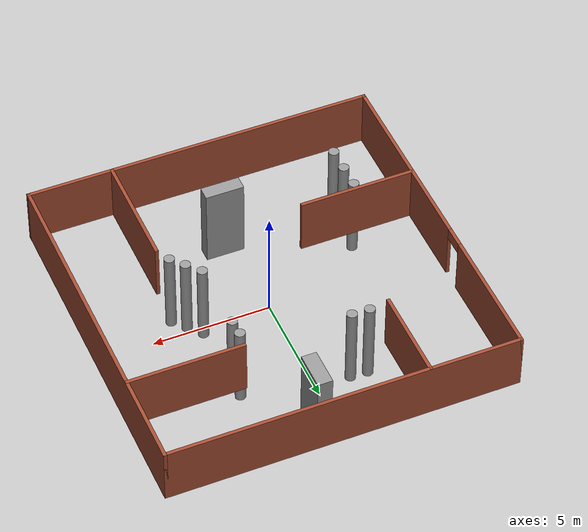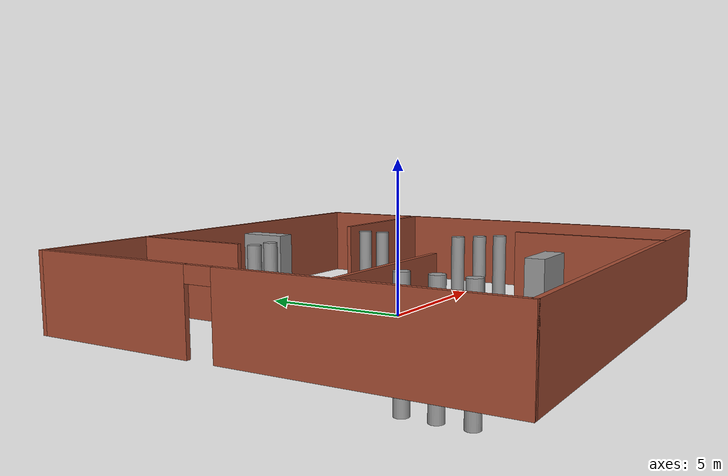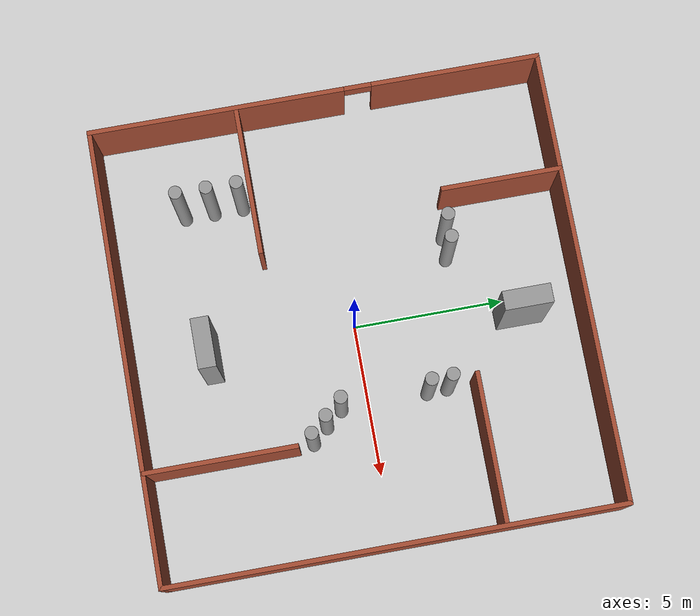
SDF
<?xml version='1.0'?>
<sdf version='1.5'>
  <model name='house_1'>
    <link name='Wall_30'>
      <pose frame=''>-7.43054 0 0 0 0 -1.5708</pose>
      <self_collide>0</self_collide>
      <kinematic>0</kinematic>
      <visual name='Wall_30_Visual_0'>
        <pose frame=''>-4.69576 0 1.25 0 -0 0</pose>
        <geometry>
          <box>
            <size>5.60848 0.15 2.5</size>
          </box>
        </geometry>
        <material>
          <script>
            <uri>file://media/materials/scripts/gazebo.material</uri>
            <name>Gazebo/Bricks</name>
          </script>
          <ambient>1 1 1 1</ambient>
          <diffuse>1 1 1 1</diffuse>
          <specular>0.2 0.2 0.2 1</specular>
          <emissive>0 0 0 1</emissive>
          <shader type='pixel'/>
        </material>
        <cast_shadows>1</cast_shadows>
        <transparency>0</transparency>
      </visual>
      <visual name='Wall_30_Visual_1'>
        <pose frame=''>3.25424 0 1.25 0 -0 0</pose>
        <geometry>
          <box>
            <size>8.49152 0.15 2.5</size>
          </box>
        </geometry>
        <material>
          <script>
            <uri>file://media/materials/scripts/gazebo.material</uri>
            <name>Gazebo/Bricks</name>
          </script>
          <ambient>1 1 1 1</ambient>
          <diffuse>1 1 1 1</diffuse>
          <specular>0.2 0.2 0.2 1</specular>
          <emissive>0 0 0 1</emissive>
          <shader type='pixel'/>
        </material>
        <cast_shadows>1</cast_shadows>
        <transparency>0</transparency>
      </visual>
      <visual name='Wall_30_Visual_2'>
        <pose frame=''>-1.44152 0 2.25 0 -0 0</pose>
        <geometry>
          <box>
            <size>0.9 0.15 0.5</size>
          </box>
        </geometry>
        <material>
          <script>
            <uri>file://media/materials/scripts/gazebo.material</uri>
            <name>Gazebo/Bricks</name>
          </script>
          <ambient>1 1 1 1</ambient>
          <diffuse>1 1 1 1</diffuse>
          <specular>0.2 0.2 0.2 1</specular>
          <emissive>0 0 0 1</emissive>
          <shader type='pixel'/>
        </material>
        <cast_shadows>1</cast_shadows>
        <transparency>0</transparency>
      </visual>
      <collision name='Wall_30_Collision_2'>
        <laser_retro>0</laser_retro>
        <max_contacts>10</max_contacts>
        <pose frame=''>-1.44152 0 2.25 0 -0 0</pose>
        <geometry>
          <box>
            <size>0.9 0.15 0.5</size>
          </box>
        </geometry>
        <surface>
          <friction>
            <ode>
              <mu>1</mu>
              <mu2>1</mu2>
              <fdir1>0 0 0</fdir1>
              <slip1>0</slip1>
              <slip2>0</slip2>
            </ode>
          </friction>
          <bounce>
            <restitution_coefficient>0</restitution_coefficient>
            <threshold>1e+06</threshold>
          </bounce>
          <contact>
            <collide_without_contact>0</collide_without_contact>
            <collide_without_contact_bitmask>1</collide_without_contact_bitmask>
            <collide_bitmask>1</collide_bitmask>
            <ode>
              <soft_cfm>0</soft_cfm>
              <soft_erp>0.2</soft_erp>
              <kp>1e+13</kp>
              <kd>1</kd>
              <max_vel>0.01</max_vel>
              <min_depth>0</min_depth>
            </ode>
            <bullet>
              <split_impulse>1</split_impulse>
              <split_impulse_penetration_threshold>-0.01</split_impulse_penetration_threshold>
              <soft_cfm>0</soft_cfm>
              <soft_erp>0.2</soft_erp>
              <kp>1e+13</kp>
              <kd>1</kd>
            </bullet>
          </contact>
        </surface>
      </collision>
      <collision name='Wall_30_Collision_0'>
        <laser_retro>0</laser_retro>
        <max_contacts>10</max_contacts>
        <pose frame=''>-4.69576 0 1.25 0 -0 0</pose>
        <geometry>
          <box>
            <size>5.60848 0.15 2.5</size>
          </box>
        </geometry>
        <surface>
          <friction>
            <ode>
              <mu>1</mu>
              <mu2>1</mu2>
              <fdir1>0 0 0</fdir1>
              <slip1>0</slip1>
              <slip2>0</slip2>
            </ode>
          </friction>
          <bounce>
            <restitution_coefficient>0</restitution_coefficient>
            <threshold>1e+06</threshold>
          </bounce>
          <contact>
            <collide_without_contact>0</collide_without_contact>
            <collide_without_contact_bitmask>1</collide_without_contact_bitmask>
            <collide_bitmask>1</collide_bitmask>
            <ode>
              <soft_cfm>0</soft_cfm>
              <soft_erp>0.2</soft_erp>
              <kp>1e+13</kp>
              <kd>1</kd>
              <max_vel>0.01</max_vel>
              <min_depth>0</min_depth>
            </ode>
            <bullet>
              <split_impulse>1</split_impulse>
              <split_impulse_penetration_threshold>-0.01</split_impulse_penetration_threshold>
              <soft_cfm>0</soft_cfm>
              <soft_erp>0.2</soft_erp>
              <kp>1e+13</kp>
              <kd>1</kd>
            </bullet>
          </contact>
        </surface>
      </collision>
      <collision name='Wall_30_Collision_1'>
        <laser_retro>0</laser_retro>
        <max_contacts>10</max_contacts>
        <pose frame=''>3.25424 0 1.25 0 -0 0</pose>
        <geometry>
          <box>
            <size>8.49152 0.15 2.5</size>
          </box>
        </geometry>
        <surface>
          <friction>
            <ode>
              <mu>1</mu>
              <mu2>1</mu2>
              <fdir1>0 0 0</fdir1>
              <slip1>0</slip1>
              <slip2>0</slip2>
            </ode>
          </friction>
          <bounce>
            <restitution_coefficient>0</restitution_coefficient>
            <threshold>1e+06</threshold>
          </bounce>
          <contact>
            <collide_without_contact>0</collide_without_contact>
            <collide_without_contact_bitmask>1</collide_without_contact_bitmask>
            <collide_bitmask>1</collide_bitmask>
            <ode>
              <soft_cfm>0</soft_cfm>
              <soft_erp>0.2</soft_erp>
              <kp>1e+13</kp>
              <kd>1</kd>
              <max_vel>0.01</max_vel>
              <min_depth>0</min_depth>
            </ode>
            <bullet>
              <split_impulse>1</split_impulse>
              <split_impulse_penetration_threshold>-0.01</split_impulse_penetration_threshold>
              <soft_cfm>0</soft_cfm>
              <soft_erp>0.2</soft_erp>
              <kp>1e+13</kp>
              <kd>1</kd>
            </bullet>
          </contact>
        </surface>
      </collision>
    </link>
    <link name='Wall_35'>
      <pose frame=''>-0.005538 7.425 0 0 -0 0</pose>
      <self_collide>0</self_collide>
      <kinematic>0</kinematic>
      <visual name='Wall_35_Visual'>
        <pose frame=''>0 0 1.25 0 -0 0</pose>
        <geometry>
          <box>
            <size>15 0.15 2.5</size>
          </box>
        </geometry>
        <material>
          <script>
            <uri>file://media/materials/scripts/gazebo.material</uri>
            <name>Gazebo/Bricks</name>
          </script>
          <ambient>1 1 1 1</ambient>
          <diffuse>1 1 1 1</diffuse>
          <specular>0.2 0.2 0.2 1</specular>
          <emissive>0 0 0 1</emissive>
          <shader type='pixel'/>
        </material>
        <cast_shadows>1</cast_shadows>
        <transparency>0</transparency>
      </visual>
      <collision name='Wall_35_Collision'>
        <laser_retro>0</laser_retro>
        <max_contacts>10</max_contacts>
        <pose frame=''>0 0 1.25 0 -0 0</pose>
        <geometry>
          <box>
            <size>15 0.15 2.5</size>
          </box>
        </geometry>
        <surface>
          <friction>
            <ode>
              <mu>1</mu>
              <mu2>1</mu2>
              <fdir1>0 0 0</fdir1>
              <slip1>0</slip1>
              <slip2>0</slip2>
            </ode>
          </friction>
          <bounce>
            <restitution_coefficient>0</restitution_coefficient>
            <threshold>1e+06</threshold>
          </bounce>
          <contact>
            <collide_without_contact>0</collide_without_contact>
            <collide_without_contact_bitmask>1</collide_without_contact_bitmask>
            <collide_bitmask>1</collide_bitmask>
            <ode>
              <soft_cfm>0</soft_cfm>
              <soft_erp>0.2</soft_erp>
              <kp>1e+13</kp>
              <kd>1</kd>
              <max_vel>0.01</max_vel>
              <min_depth>0</min_depth>
            </ode>
            <bullet>
              <split_impulse>1</split_impulse>
              <split_impulse_penetration_threshold>-0.01</split_impulse_penetration_threshold>
              <soft_cfm>0</soft_cfm>
              <soft_erp>0.2</soft_erp>
              <kp>1e+13</kp>
              <kd>1</kd>
            </bullet>
          </contact>
        </surface>
      </collision>
    </link>
    <link name='Wall_36'>
      <pose frame=''>7.41946 0 0 0 0 -1.5708</pose>
      <self_collide>0</self_collide>
      <kinematic>0</kinematic>
      <visual name='Wall_36_Visual'>
        <pose frame=''>0 0 1.25 0 -0 0</pose>
        <geometry>
          <box>
            <size>15 0.15 2.5</size>
          </box>
        </geometry>
        <material>
          <script>
            <uri>file://media/materials/scripts/gazebo.material</uri>
            <name>Gazebo/Bricks</name>
          </script>
          <ambient>1 1 1 1</ambient>
          <diffuse>1 1 1 1</diffuse>
          <specular>0.2 0.2 0.2 1</specular>
          <emissive>0 0 0 1</emissive>
          <shader type='pixel'/>
        </material>
        <cast_shadows>1</cast_shadows>
        <transparency>0</transparency>
      </visual>
      <collision name='Wall_36_Collision'>
        <laser_retro>0</laser_retro>
        <max_contacts>10</max_contacts>
        <pose frame=''>0 0 1.25 0 -0 0</pose>
        <geometry>
          <box>
            <size>15 0.15 2.5</size>
          </box>
        </geometry>
        <surface>
          <friction>
            <ode>
              <mu>1</mu>
              <mu2>1</mu2>
              <fdir1>0 0 0</fdir1>
              <slip1>0</slip1>
              <slip2>0</slip2>
            </ode>
          </friction>
          <bounce>
            <restitution_coefficient>0</restitution_coefficient>
            <threshold>1e+06</threshold>
          </bounce>
          <contact>
            <collide_without_contact>0</collide_without_contact>
            <collide_without_contact_bitmask>1</collide_without_contact_bitmask>
            <collide_bitmask>1</collide_bitmask>
            <ode>
              <soft_cfm>0</soft_cfm>
              <soft_erp>0.2</soft_erp>
              <kp>1e+13</kp>
              <kd>1</kd>
              <max_vel>0.01</max_vel>
              <min_depth>0</min_depth>
            </ode>
            <bullet>
              <split_impulse>1</split_impulse>
              <split_impulse_penetration_threshold>-0.01</split_impulse_penetration_threshold>
              <soft_cfm>0</soft_cfm>
              <soft_erp>0.2</soft_erp>
              <kp>1e+13</kp>
              <kd>1</kd>
            </bullet>
          </contact>
        </surface>
      </collision>
    </link>
    <link name='Wall_38'>
      <pose frame=''>-0.005538 -7.425 0 0 -0 0</pose>
      <self_collide>0</self_collide>
      <kinematic>0</kinematic>
      <visual name='Wall_38_Visual'>
        <pose frame=''>0 0 1.25 0 -0 0</pose>
        <geometry>
          <box>
            <size>15 0.15 2.5</size>
          </box>
        </geometry>
        <material>
          <script>
            <uri>file://media/materials/scripts/gazebo.material</uri>
            <name>Gazebo/Bricks</name>
          </script>
          <ambient>1 1 1 1</ambient>
          <diffuse>1 1 1 1</diffuse>
          <specular>0.2 0.2 0.2 1</specular>
          <emissive>0 0 0 1</emissive>
          <shader type='pixel'/>
        </material>
        <cast_shadows>1</cast_shadows>
        <transparency>0</transparency>
      </visual>
      <collision name='Wall_38_Collision'>
        <laser_retro>0</laser_retro>
        <max_contacts>10</max_contacts>
        <pose frame=''>0 0 1.25 0 -0 0</pose>
        <geometry>
          <box>
            <size>15 0.15 2.5</size>
          </box>
        </geometry>
        <surface>
          <friction>
            <ode>
              <mu>1</mu>
              <mu2>1</mu2>
              <fdir1>0 0 0</fdir1>
              <slip1>0</slip1>
              <slip2>0</slip2>
            </ode>
          </friction>
          <bounce>
            <restitution_coefficient>0</restitution_coefficient>
            <threshold>1e+06</threshold>
          </bounce>
          <contact>
            <collide_without_contact>0</collide_without_contact>
            <collide_without_contact_bitmask>1</collide_without_contact_bitmask>
            <collide_bitmask>1</collide_bitmask>
            <ode>
              <soft_cfm>0</soft_cfm>
              <soft_erp>0.2</soft_erp>
              <kp>1e+13</kp>
              <kd>1</kd>
              <max_vel>0.01</max_vel>
              <min_depth>0</min_depth>
            </ode>
            <bullet>
              <split_impulse>1</split_impulse>
              <split_impulse_penetration_threshold>-0.01</split_impulse_penetration_threshold>
              <soft_cfm>0</soft_cfm>
              <soft_erp>0.2</soft_erp>
              <kp>1e+13</kp>
              <kd>1</kd>
            </bullet>
          </contact>
        </surface>
      </collision>
    </link>
    <link name='Wall_40'>
      <pose frame=''>-3.5597 5.4868 0 0 0 -1.5708</pose>
      <self_collide>0</self_collide>
      <kinematic>0</kinematic>
      <visual name='Wall_40_Visual'>
        <pose frame=''>0 0 1.25 0 -0 0</pose>
        <geometry>
          <box>
            <size>4 0.15 2.5</size>
          </box>
        </geometry>
        <material>
          <script>
            <uri>file://media/materials/scripts/gazebo.material</uri>
            <name>Gazebo/Bricks</name>
          </script>
          <ambient>1 1 1 1</ambient>
          <diffuse>1 1 1 1</diffuse>
          <specular>0.2 0.2 0.2 1</specular>
          <emissive>0 0 0 1</emissive>
          <shader type='pixel'/>
        </material>
        <cast_shadows>1</cast_shadows>
        <transparency>0</transparency>
      </visual>
      <collision name='Wall_40_Collision'>
        <laser_retro>0</laser_retro>
        <max_contacts>10</max_contacts>
        <pose frame=''>0 0 1.25 0 -0 0</pose>
        <geometry>
          <box>
            <size>4 0.15 2.5</size>
          </box>
        </geometry>
        <surface>
          <friction>
            <ode>
              <mu>1</mu>
              <mu2>1</mu2>
              <fdir1>0 0 0</fdir1>
              <slip1>0</slip1>
              <slip2>0</slip2>
            </ode>
          </friction>
          <bounce>
            <restitution_coefficient>0</restitution_coefficient>
            <threshold>1e+06</threshold>
          </bounce>
          <contact>
            <collide_without_contact>0</collide_without_contact>
            <collide_without_contact_bitmask>1</collide_without_contact_bitmask>
            <collide_bitmask>1</collide_bitmask>
            <ode>
              <soft_cfm>0</soft_cfm>
              <soft_erp>0.2</soft_erp>
              <kp>1e+13</kp>
              <kd>1</kd>
              <max_vel>0.01</max_vel>
              <min_depth>0</min_depth>
            </ode>
            <bullet>
              <split_impulse>1</split_impulse>
              <split_impulse_penetration_threshold>-0.01</split_impulse_penetration_threshold>
              <soft_cfm>0</soft_cfm>
              <soft_erp>0.2</soft_erp>
              <kp>1e+13</kp>
              <kd>1</kd>
            </bullet>
          </contact>
        </surface>
      </collision>
    </link>
    <link name='Wall_46'>
      <pose frame=''>4.97609 3.51024 0 0 -0 3.14159</pose>
      <self_collide>0</self_collide>
      <kinematic>0</kinematic>
      <visual name='Wall_46_Visual'>
        <pose frame=''>0 0 1.25 0 -0 0</pose>
        <geometry>
          <box>
            <size>5 0.15 2.5</size>
          </box>
        </geometry>
        <material>
          <script>
            <uri>file://media/materials/scripts/gazebo.material</uri>
            <name>Gazebo/Bricks</name>
          </script>
          <ambient>1 1 1 1</ambient>
          <diffuse>1 1 1 1</diffuse>
          <specular>0.2 0.2 0.2 1</specular>
          <emissive>0 0 0 1</emissive>
          <shader type='pixel'/>
        </material>
        <cast_shadows>1</cast_shadows>
        <transparency>0</transparency>
      </visual>
      <collision name='Wall_46_Collision'>
        <laser_retro>0</laser_retro>
        <max_contacts>10</max_contacts>
        <pose frame=''>0 0 1.25 0 -0 0</pose>
        <geometry>
          <box>
            <size>5 0.15 2.5</size>
          </box>
        </geometry>
        <surface>
          <friction>
            <ode>
              <mu>1</mu>
              <mu2>1</mu2>
              <fdir1>0 0 0</fdir1>
              <slip1>0</slip1>
              <slip2>0</slip2>
            </ode>
          </friction>
          <bounce>
            <restitution_coefficient>0</restitution_coefficient>
            <threshold>1e+06</threshold>
          </bounce>
          <contact>
            <collide_without_contact>0</collide_without_contact>
            <collide_without_contact_bitmask>1</collide_without_contact_bitmask>
            <collide_bitmask>1</collide_bitmask>
            <ode>
              <soft_cfm>0</soft_cfm>
              <soft_erp>0.2</soft_erp>
              <kp>1e+13</kp>
              <kd>1</kd>
              <max_vel>0.01</max_vel>
              <min_depth>0</min_depth>
            </ode>
            <bullet>
              <split_impulse>1</split_impulse>
              <split_impulse_penetration_threshold>-0.01</split_impulse_penetration_threshold>
              <soft_cfm>0</soft_cfm>
              <soft_erp>0.2</soft_erp>
              <kp>1e+13</kp>
              <kd>1</kd>
            </bullet>
          </contact>
        </surface>
      </collision>
    </link>
    <link name='Wall_48'>
      <pose frame=''>3.81452 -4.96221 0 0 -0 1.5708</pose>
      <self_collide>0</self_collide>
      <kinematic>0</kinematic>
      <visual name='Wall_48_Visual'>
        <pose frame=''>0 0 1.25 0 -0 0</pose>
        <geometry>
          <box>
            <size>5 0.15 2.5</size>
          </box>
        </geometry>
        <material>
          <script>
            <uri>file://media/materials/scripts/gazebo.material</uri>
            <name>Gazebo/Bricks</name>
          </script>
          <ambient>1 1 1 1</ambient>
          <diffuse>1 1 1 1</diffuse>
          <specular>0.2 0.2 0.2 1</specular>
          <emissive>0 0 0 1</emissive>
          <shader type='pixel'/>
        </material>
        <cast_shadows>1</cast_shadows>
        <transparency>0</transparency>
      </visual>
      <collision name='Wall_48_Collision'>
        <laser_retro>0</laser_retro>
        <max_contacts>10</max_contacts>
        <pose frame=''>0 0 1.25 0 -0 0</pose>
        <geometry>
          <box>
            <size>5 0.15 2.5</size>
          </box>
        </geometry>
        <surface>
          <friction>
            <ode>
              <mu>1</mu>
              <mu2>1</mu2>
              <fdir1>0 0 0</fdir1>
              <slip1>0</slip1>
              <slip2>0</slip2>
            </ode>
          </friction>
          <bounce>
            <restitution_coefficient>0</restitution_coefficient>
            <threshold>1e+06</threshold>
          </bounce>
          <contact>
            <collide_without_contact>0</collide_without_contact>
            <collide_without_contact_bitmask>1</collide_without_contact_bitmask>
            <collide_bitmask>1</collide_bitmask>
            <ode>
              <soft_cfm>0</soft_cfm>
              <soft_erp>0.2</soft_erp>
              <kp>1e+13</kp>
              <kd>1</kd>
              <max_vel>0.01</max_vel>
              <min_depth>0</min_depth>
            </ode>
            <bullet>
              <split_impulse>1</split_impulse>
              <split_impulse_penetration_threshold>-0.01</split_impulse_penetration_threshold>
              <soft_cfm>0</soft_cfm>
              <soft_erp>0.2</soft_erp>
              <kp>1e+13</kp>
              <kd>1</kd>
            </bullet>
          </contact>
        </surface>
      </collision>
    </link>
    <link name='Wall_50'>
      <pose frame=''>-4.99035 -2.59777 0 0 -0 0</pose>
      <self_collide>0</self_collide>
      <kinematic>0</kinematic>
      <visual name='Wall_50_Visual'>
        <pose frame=''>0 0 1.25 0 -0 0</pose>
        <geometry>
          <box>
            <size>5 0.15 2.5</size>
          </box>
        </geometry>
        <material>
          <script>
            <uri>file://media/materials/scripts/gazebo.material</uri>
            <name>Gazebo/Bricks</name>
          </script>
          <ambient>1 1 1 1</ambient>
          <diffuse>1 1 1 1</diffuse>
          <specular>0.2 0.2 0.2 1</specular>
          <emissive>0 0 0 1</emissive>
          <shader type='pixel'/>
        </material>
        <cast_shadows>1</cast_shadows>
        <transparency>0</transparency>
      </visual>
      <collision name='Wall_50_Collision'>
        <laser_retro>0</laser_retro>
        <max_contacts>10</max_contacts>
        <pose frame=''>0 0 1.25 0 -0 0</pose>
        <geometry>
          <box>
            <size>5 0.15 2.5</size>
          </box>
        </geometry>
        <surface>
          <friction>
            <ode>
              <mu>1</mu>
              <mu2>1</mu2>
              <fdir1>0 0 0</fdir1>
              <slip1>0</slip1>
              <slip2>0</slip2>
            </ode>
          </friction>
          <bounce>
            <restitution_coefficient>0</restitution_coefficient>
            <threshold>1e+06</threshold>
          </bounce>
          <contact>
            <collide_without_contact>0</collide_without_contact>
            <collide_without_contact_bitmask>1</collide_without_contact_bitmask>
            <collide_bitmask>1</collide_bitmask>
            <ode>
              <soft_cfm>0</soft_cfm>
              <soft_erp>0.2</soft_erp>
              <kp>1e+13</kp>
              <kd>1</kd>
              <max_vel>0.01</max_vel>
              <min_depth>0</min_depth>
            </ode>
            <bullet>
              <split_impulse>1</split_impulse>
              <split_impulse_penetration_threshold>-0.01</split_impulse_penetration_threshold>
              <soft_cfm>0</soft_cfm>
              <soft_erp>0.2</soft_erp>
              <kp>1e+13</kp>
              <kd>1</kd>
            </bullet>
          </contact>
        </surface>
      </collision>
    </link>
    <link name='link_0'>
      <pose frame=''>-2.74804 3.57903 0.5 0 -0 0</pose>
      <visual name='visual'>
        <pose frame=''>0 0 0 0 -0 0</pose>
        <geometry>
          <cylinder>
            <radius>0.222213</radius>
            <length>3.74711</length>
          </cylinder>
        </geometry>
        <material>
          <lighting>1</lighting>
          <script>
            <uri>file://media/materials/scripts/gazebo.material</uri>
            <name>Gazebo/Grey</name>
          </script>
          <ambient>0.3 0.3 0.3 1</ambient>
          <diffuse>0.7 0.7 0.7 1</diffuse>
          <specular>0.01 0.01 0.01 1</specular>
          <emissive>0 0 0 1</emissive>
          <shader type='pixel'/>
        </material>
        <cast_shadows>1</cast_shadows>
        <transparency>0</transparency>
      </visual>
      <collision name='collision'>
        <laser_retro>0</laser_retro>
        <max_contacts>10</max_contacts>
        <pose frame=''>0 0 0 0 -0 0</pose>
        <geometry>
          <cylinder>
            <radius>0.222213</radius>
            <length>3.74711</length>
          </cylinder>
        </geometry>
        <surface>
          <friction>
            <ode>
              <mu>1</mu>
              <mu2>1</mu2>
              <fdir1>0 0 0</fdir1>
              <slip1>0</slip1>
              <slip2>0</slip2>
            </ode>
          </friction>
          <bounce>
            <restitution_coefficient>0</restitution_coefficient>
            <threshold>1e+06</threshold>
          </bounce>
          <contact>
            <collide_without_contact>0</collide_without_contact>
            <collide_without_contact_bitmask>1</collide_without_contact_bitmask>
            <collide_bitmask>1</collide_bitmask>
            <ode>
              <soft_cfm>0</soft_cfm>
              <soft_erp>0.2</soft_erp>
              <kp>1e+13</kp>
              <kd>1</kd>
              <max_vel>0.01</max_vel>
              <min_depth>0</min_depth>
            </ode>
            <bullet>
              <split_impulse>1</split_impulse>
              <split_impulse_penetration_threshold>-0.01</split_impulse_penetration_threshold>
              <soft_cfm>0</soft_cfm>
              <soft_erp>0.2</soft_erp>
              <kp>1e+13</kp>
              <kd>1</kd>
            </bullet>
          </contact>
        </surface>
      </collision>
    </link>
    <link name='link_0_clone'>
      <pose frame=''>-2 3.54929 0.5 0 -0 0</pose>
      <visual name='ModelPreview_1::link_0_clone::visual'>
        <pose frame=''>0 0 0 0 -0 0</pose>
        <geometry>
          <cylinder>
            <radius>0.222213</radius>
            <length>3.74711</length>
          </cylinder>
        </geometry>
        <material>
          <lighting>1</lighting>
          <script>
            <uri>file://media/materials/scripts/gazebo.material</uri>
            <name>Gazebo/Grey</name>
          </script>
          <ambient>0.3 0.3 0.3 1</ambient>
          <diffuse>0.7 0.7 0.7 1</diffuse>
          <specular>0.01 0.01 0.01 1</specular>
          <emissive>0 0 0 1</emissive>
          <shader type='pixel'/>
        </material>
        <cast_shadows>1</cast_shadows>
        <transparency>0</transparency>
      </visual>
      <collision name='collision'>
        <laser_retro>0</laser_retro>
        <max_contacts>10</max_contacts>
        <pose frame=''>0 0 0 0 -0 0</pose>
        <geometry>
          <cylinder>
            <radius>0.222213</radius>
            <length>3.74711</length>
          </cylinder>
        </geometry>
        <surface>
          <friction>
            <ode>
              <mu>1</mu>
              <mu2>1</mu2>
              <fdir1>0 0 0</fdir1>
              <slip1>0</slip1>
              <slip2>0</slip2>
            </ode>
          </friction>
          <bounce>
            <restitution_coefficient>0</restitution_coefficient>
            <threshold>1e+06</threshold>
          </bounce>
          <contact>
            <collide_without_contact>0</collide_without_contact>
            <collide_without_contact_bitmask>1</collide_without_contact_bitmask>
            <collide_bitmask>1</collide_bitmask>
            <ode>
              <soft_cfm>0</soft_cfm>
              <soft_erp>0.2</soft_erp>
              <kp>1e+13</kp>
              <kd>1</kd>
              <max_vel>0.01</max_vel>
              <min_depth>0</min_depth>
            </ode>
            <bullet>
              <split_impulse>1</split_impulse>
              <split_impulse_penetration_threshold>-0.01</split_impulse_penetration_threshold>
              <soft_cfm>0</soft_cfm>
              <soft_erp>0.2</soft_erp>
              <kp>1e+13</kp>
              <kd>1</kd>
            </bullet>
          </contact>
        </surface>
      </collision>
    </link>
    <link name='link_0_clone_2'>
      <pose frame=''>-5 -3 0.5 0 -0 0</pose>
      <visual name='ModelPreview_1::link_0_clone_2::visual'>
        <pose frame=''>0 0 0 0 -0 0</pose>
        <geometry>
          <cylinder>
            <radius>0.222213</radius>
            <length>3.74711</length>
          </cylinder>
        </geometry>
        <material>
          <lighting>1</lighting>
          <script>
            <uri>file://media/materials/scripts/gazebo.material</uri>
            <name>Gazebo/Grey</name>
          </script>
          <ambient>0.3 0.3 0.3 1</ambient>
          <diffuse>0.7 0.7 0.7 1</diffuse>
          <specular>0.01 0.01 0.01 1</specular>
          <emissive>0 0 0 1</emissive>
          <shader type='pixel'/>
        </material>
        <cast_shadows>1</cast_shadows>
        <transparency>0</transparency>
      </visual>
      <collision name='collision'>
        <laser_retro>0</laser_retro>
        <max_contacts>10</max_contacts>
        <pose frame=''>0 0 0 0 -0 0</pose>
        <geometry>
          <cylinder>
            <radius>0.222213</radius>
            <length>3.74711</length>
          </cylinder>
        </geometry>
        <surface>
          <friction>
            <ode>
              <mu>1</mu>
              <mu2>1</mu2>
              <fdir1>0 0 0</fdir1>
              <slip1>0</slip1>
              <slip2>0</slip2>
            </ode>
          </friction>
          <bounce>
            <restitution_coefficient>0</restitution_coefficient>
            <threshold>1e+06</threshold>
          </bounce>
          <contact>
            <collide_without_contact>0</collide_without_contact>
            <collide_without_contact_bitmask>1</collide_without_contact_bitmask>
            <collide_bitmask>1</collide_bitmask>
            <ode>
              <soft_cfm>0</soft_cfm>
              <soft_erp>0.2</soft_erp>
              <kp>1e+13</kp>
              <kd>1</kd>
              <max_vel>0.01</max_vel>
              <min_depth>0</min_depth>
            </ode>
            <bullet>
              <split_impulse>1</split_impulse>
              <split_impulse_penetration_threshold>-0.01</split_impulse_penetration_threshold>
              <soft_cfm>0</soft_cfm>
              <soft_erp>0.2</soft_erp>
              <kp>1e+13</kp>
              <kd>1</kd>
            </bullet>
          </contact>
        </surface>
      </collision>
    </link>
    <link name='link_0_clone_3'>
      <pose frame=''>-5 -4 0.5 0 -0 0</pose>
      <visual name='ModelPreview_1::link_0_clone_3::visual'>
        <pose frame=''>0 0 0 0 -0 0</pose>
        <geometry>
          <cylinder>
            <radius>0.222213</radius>
            <length>3.74711</length>
          </cylinder>
        </geometry>
        <material>
          <lighting>1</lighting>
          <script>
            <uri>file://media/materials/scripts/gazebo.material</uri>
            <name>Gazebo/Grey</name>
          </script>
          <ambient>0.3 0.3 0.3 1</ambient>
          <diffuse>0.7 0.7 0.7 1</diffuse>
          <specular>0.01 0.01 0.01 1</specular>
          <emissive>0 0 0 1</emissive>
          <shader type='pixel'/>
        </material>
        <cast_shadows>1</cast_shadows>
        <transparency>0</transparency>
      </visual>
      <collision name='collision'>
        <laser_retro>0</laser_retro>
        <max_contacts>10</max_contacts>
        <pose frame=''>0 0 0 0 -0 0</pose>
        <geometry>
          <cylinder>
            <radius>0.222213</radius>
            <length>3.74711</length>
          </cylinder>
        </geometry>
        <surface>
          <friction>
            <ode>
              <mu>1</mu>
              <mu2>1</mu2>
              <fdir1>0 0 0</fdir1>
              <slip1>0</slip1>
              <slip2>0</slip2>
            </ode>
          </friction>
          <bounce>
            <restitution_coefficient>0</restitution_coefficient>
            <threshold>1e+06</threshold>
          </bounce>
          <contact>
            <collide_without_contact>0</collide_without_contact>
            <collide_without_contact_bitmask>1</collide_without_contact_bitmask>
            <collide_bitmask>1</collide_bitmask>
            <ode>
              <soft_cfm>0</soft_cfm>
              <soft_erp>0.2</soft_erp>
              <kp>1e+13</kp>
              <kd>1</kd>
              <max_vel>0.01</max_vel>
              <min_depth>0</min_depth>
            </ode>
            <bullet>
              <split_impulse>1</split_impulse>
              <split_impulse_penetration_threshold>-0.01</split_impulse_penetration_threshold>
              <soft_cfm>0</soft_cfm>
              <soft_erp>0.2</soft_erp>
              <kp>1e+13</kp>
              <kd>1</kd>
            </bullet>
          </contact>
        </surface>
      </collision>
    </link>
    <link name='link_0_clone_4'>
      <pose frame=''>-5 -5 0.5 0 -0 0</pose>
      <visual name='ModelPreview_1::link_0_clone_4::visual'>
        <pose frame=''>0 0 0 0 -0 0</pose>
        <geometry>
          <cylinder>
            <radius>0.222213</radius>
            <length>3.74711</length>
          </cylinder>
        </geometry>
        <material>
          <lighting>1</lighting>
          <script>
            <uri>file://media/materials/scripts/gazebo.material</uri>
            <name>Gazebo/Grey</name>
          </script>
          <ambient>0.3 0.3 0.3 1</ambient>
          <diffuse>0.7 0.7 0.7 1</diffuse>
          <specular>0.01 0.01 0.01 1</specular>
          <emissive>0 0 0 1</emissive>
          <shader type='pixel'/>
        </material>
        <cast_shadows>1</cast_shadows>
        <transparency>0</transparency>
      </visual>
      <collision name='collision'>
        <laser_retro>0</laser_retro>
        <max_contacts>10</max_contacts>
        <pose frame=''>0 0 0 0 -0 0</pose>
        <geometry>
          <cylinder>
            <radius>0.222213</radius>
            <length>3.74711</length>
          </cylinder>
        </geometry>
        <surface>
          <friction>
            <ode>
              <mu>1</mu>
              <mu2>1</mu2>
              <fdir1>0 0 0</fdir1>
              <slip1>0</slip1>
              <slip2>0</slip2>
            </ode>
          </friction>
          <bounce>
            <restitution_coefficient>0</restitution_coefficient>
            <threshold>1e+06</threshold>
          </bounce>
          <contact>
            <collide_without_contact>0</collide_without_contact>
            <collide_without_contact_bitmask>1</collide_without_contact_bitmask>
            <collide_bitmask>1</collide_bitmask>
            <ode>
              <soft_cfm>0</soft_cfm>
              <soft_erp>0.2</soft_erp>
              <kp>1e+13</kp>
              <kd>1</kd>
              <max_vel>0.01</max_vel>
              <min_depth>0</min_depth>
            </ode>
            <bullet>
              <split_impulse>1</split_impulse>
              <split_impulse_penetration_threshold>-0.01</split_impulse_penetration_threshold>
              <soft_cfm>0</soft_cfm>
              <soft_erp>0.2</soft_erp>
              <kp>1e+13</kp>
              <kd>1</kd>
            </bullet>
          </contact>
        </surface>
      </collision>
    </link>
    <link name='link_0_clone_5'>
      <pose frame=''>3.47579 -2 0.5 0 -0 0</pose>
      <visual name='ModelPreview_1::link_0_clone_5::visual'>
        <pose frame=''>0 0 0 0 -0 0</pose>
        <geometry>
          <cylinder>
            <radius>0.222213</radius>
            <length>3.74711</length>
          </cylinder>
        </geometry>
        <material>
          <lighting>1</lighting>
          <script>
            <uri>file://media/materials/scripts/gazebo.material</uri>
            <name>Gazebo/Grey</name>
          </script>
          <ambient>0.3 0.3 0.3 1</ambient>
          <diffuse>0.7 0.7 0.7 1</diffuse>
          <specular>0.01 0.01 0.01 1</specular>
          <emissive>0 0 0 1</emissive>
          <shader type='pixel'/>
        </material>
        <cast_shadows>1</cast_shadows>
        <transparency>0</transparency>
      </visual>
      <collision name='collision'>
        <laser_retro>0</laser_retro>
        <max_contacts>10</max_contacts>
        <pose frame=''>0 0 0 0 -0 0</pose>
        <geometry>
          <cylinder>
            <radius>0.222213</radius>
            <length>3.74711</length>
          </cylinder>
        </geometry>
        <surface>
          <friction>
            <ode>
              <mu>1</mu>
              <mu2>1</mu2>
              <fdir1>0 0 0</fdir1>
              <slip1>0</slip1>
              <slip2>0</slip2>
            </ode>
          </friction>
          <bounce>
            <restitution_coefficient>0</restitution_coefficient>
            <threshold>1e+06</threshold>
          </bounce>
          <contact>
            <collide_without_contact>0</collide_without_contact>
            <collide_without_contact_bitmask>1</collide_without_contact_bitmask>
            <collide_bitmask>1</collide_bitmask>
            <ode>
              <soft_cfm>0</soft_cfm>
              <soft_erp>0.2</soft_erp>
              <kp>1e+13</kp>
              <kd>1</kd>
              <max_vel>0.01</max_vel>
              <min_depth>0</min_depth>
            </ode>
            <bullet>
              <split_impulse>1</split_impulse>
              <split_impulse_penetration_threshold>-0.01</split_impulse_penetration_threshold>
              <soft_cfm>0</soft_cfm>
              <soft_erp>0.2</soft_erp>
              <kp>1e+13</kp>
              <kd>1</kd>
            </bullet>
          </contact>
        </surface>
      </collision>
    </link>
    <link name='link_0_clone_6'>
      <pose frame=''>3 -1.46562 0.5 0 -0 0</pose>
      <visual name='ModelPreview_1::link_0_clone_6::visual'>
        <pose frame=''>0 0 0 0 -0 0</pose>
        <geometry>
          <cylinder>
            <radius>0.222213</radius>
            <length>3.74711</length>
          </cylinder>
        </geometry>
        <material>
          <lighting>1</lighting>
          <script>
            <uri>file://media/materials/scripts/gazebo.material</uri>
            <name>Gazebo/Grey</name>
          </script>
          <ambient>0.3 0.3 0.3 1</ambient>
          <diffuse>0.7 0.7 0.7 1</diffuse>
          <specular>0.01 0.01 0.01 1</specular>
          <emissive>0 0 0 1</emissive>
          <shader type='pixel'/>
        </material>
        <cast_shadows>1</cast_shadows>
        <transparency>0</transparency>
      </visual>
      <collision name='collision'>
        <laser_retro>0</laser_retro>
        <max_contacts>10</max_contacts>
        <pose frame=''>0 0 0 0 -0 0</pose>
        <geometry>
          <cylinder>
            <radius>0.222213</radius>
            <length>3.74711</length>
          </cylinder>
        </geometry>
        <surface>
          <friction>
            <ode>
              <mu>1</mu>
              <mu2>1</mu2>
              <fdir1>0 0 0</fdir1>
              <slip1>0</slip1>
              <slip2>0</slip2>
            </ode>
          </friction>
          <bounce>
            <restitution_coefficient>0</restitution_coefficient>
            <threshold>1e+06</threshold>
          </bounce>
          <contact>
            <collide_without_contact>0</collide_without_contact>
            <collide_without_contact_bitmask>1</collide_without_contact_bitmask>
            <collide_bitmask>1</collide_bitmask>
            <ode>
              <soft_cfm>0</soft_cfm>
              <soft_erp>0.2</soft_erp>
              <kp>1e+13</kp>
              <kd>1</kd>
              <max_vel>0.01</max_vel>
              <min_depth>0</min_depth>
            </ode>
            <bullet>
              <split_impulse>1</split_impulse>
              <split_impulse_penetration_threshold>-0.01</split_impulse_penetration_threshold>
              <soft_cfm>0</soft_cfm>
              <soft_erp>0.2</soft_erp>
              <kp>1e+13</kp>
              <kd>1</kd>
            </bullet>
          </contact>
        </surface>
      </collision>
    </link>
    <link name='link_0_clone_7'>
      <pose frame=''>2.42209 2.75947 0.5 0 -0 0</pose>
      <visual name='ModelPreview_1::link_0_clone_7::visual'>
        <pose frame=''>0 0 0 0 -0 0</pose>
        <geometry>
          <cylinder>
            <radius>0.222213</radius>
            <length>3.74711</length>
          </cylinder>
        </geometry>
        <material>
          <lighting>1</lighting>
          <script>
            <uri>file://media/materials/scripts/gazebo.material</uri>
            <name>Gazebo/Grey</name>
          </script>
          <ambient>0.3 0.3 0.3 1</ambient>
          <diffuse>0.7 0.7 0.7 1</diffuse>
          <specular>0.01 0.01 0.01 1</specular>
          <emissive>0 0 0 1</emissive>
          <shader type='pixel'/>
        </material>
        <cast_shadows>1</cast_shadows>
        <transparency>0</transparency>
      </visual>
      <collision name='collision'>
        <laser_retro>0</laser_retro>
        <max_contacts>10</max_contacts>
        <pose frame=''>0 0 0 0 -0 0</pose>
        <geometry>
          <cylinder>
            <radius>0.222213</radius>
            <length>3.74711</length>
          </cylinder>
        </geometry>
        <surface>
          <friction>
            <ode>
              <mu>1</mu>
              <mu2>1</mu2>
              <fdir1>0 0 0</fdir1>
              <slip1>0</slip1>
              <slip2>0</slip2>
            </ode>
          </friction>
          <bounce>
            <restitution_coefficient>0</restitution_coefficient>
            <threshold>1e+06</threshold>
          </bounce>
          <contact>
            <collide_without_contact>0</collide_without_contact>
            <collide_without_contact_bitmask>1</collide_without_contact_bitmask>
            <collide_bitmask>1</collide_bitmask>
            <ode>
              <soft_cfm>0</soft_cfm>
              <soft_erp>0.2</soft_erp>
              <kp>1e+13</kp>
              <kd>1</kd>
              <max_vel>0.01</max_vel>
              <min_depth>0</min_depth>
            </ode>
            <bullet>
              <split_impulse>1</split_impulse>
              <split_impulse_penetration_threshold>-0.01</split_impulse_penetration_threshold>
              <soft_cfm>0</soft_cfm>
              <soft_erp>0.2</soft_erp>
              <kp>1e+13</kp>
              <kd>1</kd>
            </bullet>
          </contact>
        </surface>
      </collision>
    </link>
    <link name='link_0_clone_8'>
      <pose frame=''>2.51129 -0.893249 0.5 0 -0 0</pose>
      <visual name='ModelPreview_1::link_0_clone_8::visual'>
        <pose frame=''>0 0 0 0 -0 0</pose>
        <geometry>
          <cylinder>
            <radius>0.222213</radius>
            <length>3.74711</length>
          </cylinder>
        </geometry>
        <material>
          <lighting>1</lighting>
          <script>
            <uri>file://media/materials/scripts/gazebo.material</uri>
            <name>Gazebo/Grey</name>
          </script>
          <ambient>0.3 0.3 0.3 1</ambient>
          <diffuse>0.7 0.7 0.7 1</diffuse>
          <specular>0.01 0.01 0.01 1</specular>
          <emissive>0 0 0 1</emissive>
          <shader type='pixel'/>
        </material>
        <cast_shadows>1</cast_shadows>
        <transparency>0</transparency>
      </visual>
      <collision name='collision'>
        <laser_retro>0</laser_retro>
        <max_contacts>10</max_contacts>
        <pose frame=''>0 0 0 0 -0 0</pose>
        <geometry>
          <cylinder>
            <radius>0.222213</radius>
            <length>3.74711</length>
          </cylinder>
        </geometry>
        <surface>
          <friction>
            <ode>
              <mu>1</mu>
              <mu2>1</mu2>
              <fdir1>0 0 0</fdir1>
              <slip1>0</slip1>
              <slip2>0</slip2>
            </ode>
          </friction>
          <bounce>
            <restitution_coefficient>0</restitution_coefficient>
            <threshold>1e+06</threshold>
          </bounce>
          <contact>
            <collide_without_contact>0</collide_without_contact>
            <collide_without_contact_bitmask>1</collide_without_contact_bitmask>
            <collide_bitmask>1</collide_bitmask>
            <ode>
              <soft_cfm>0</soft_cfm>
              <soft_erp>0.2</soft_erp>
              <kp>1e+13</kp>
              <kd>1</kd>
              <max_vel>0.01</max_vel>
              <min_depth>0</min_depth>
            </ode>
            <bullet>
              <split_impulse>1</split_impulse>
              <split_impulse_penetration_threshold>-0.01</split_impulse_penetration_threshold>
              <soft_cfm>0</soft_cfm>
              <soft_erp>0.2</soft_erp>
              <kp>1e+13</kp>
              <kd>1</kd>
            </bullet>
          </contact>
        </surface>
      </collision>
    </link>
    <link name='link_0_clone_9'>
      <pose frame=''>2.45275 2.0657 0.5 0 -0 0</pose>
      <visual name='ModelPreview_1::link_0_clone_9::visual'>
        <pose frame=''>0 0 0 0 -0 0</pose>
        <geometry>
          <cylinder>
            <radius>0.222213</radius>
            <length>3.74711</length>
          </cylinder>
        </geometry>
        <material>
          <lighting>1</lighting>
          <script>
            <uri>file://media/materials/scripts/gazebo.material</uri>
            <name>Gazebo/Grey</name>
          </script>
          <ambient>0.3 0.3 0.3 1</ambient>
          <diffuse>0.7 0.7 0.7 1</diffuse>
          <specular>0.01 0.01 0.01 1</specular>
          <emissive>0 0 0 1</emissive>
          <shader type='pixel'/>
        </material>
        <cast_shadows>1</cast_shadows>
        <transparency>0</transparency>
      </visual>
      <collision name='collision'>
        <laser_retro>0</laser_retro>
        <max_contacts>10</max_contacts>
        <pose frame=''>0 0 0 0 -0 0</pose>
        <geometry>
          <cylinder>
            <radius>0.222213</radius>
            <length>3.74711</length>
          </cylinder>
        </geometry>
        <surface>
          <friction>
            <ode>
              <mu>1</mu>
              <mu2>1</mu2>
              <fdir1>0 0 0</fdir1>
              <slip1>0</slip1>
              <slip2>0</slip2>
            </ode>
          </friction>
          <bounce>
            <restitution_coefficient>0</restitution_coefficient>
            <threshold>1e+06</threshold>
          </bounce>
          <contact>
            <collide_without_contact>0</collide_without_contact>
            <collide_without_contact_bitmask>1</collide_without_contact_bitmask>
            <collide_bitmask>1</collide_bitmask>
            <ode>
              <soft_cfm>0</soft_cfm>
              <soft_erp>0.2</soft_erp>
              <kp>1e+13</kp>
              <kd>1</kd>
              <max_vel>0.01</max_vel>
              <min_depth>0</min_depth>
            </ode>
            <bullet>
              <split_impulse>1</split_impulse>
              <split_impulse_penetration_threshold>-0.01</split_impulse_penetration_threshold>
              <soft_cfm>0</soft_cfm>
              <soft_erp>0.2</soft_erp>
              <kp>1e+13</kp>
              <kd>1</kd>
            </bullet>
          </contact>
        </surface>
      </collision>
    </link>
    <link name='link_1'>
      <pose frame=''>0.384783 5.58847 0.5 0 -0 0</pose>
      <visual name='visual'>
        <pose frame=''>0 0 0 0 -0 0</pose>
        <geometry>
          <box>
            <size>0.632818 1.60087 3.61809</size>
          </box>
        </geometry>
        <material>
          <lighting>1</lighting>
          <script>
            <uri>file://media/materials/scripts/gazebo.material</uri>
            <name>Gazebo/Grey</name>
          </script>
          <ambient>0.3 0.3 0.3 1</ambient>
          <diffuse>0.7 0.7 0.7 1</diffuse>
          <specular>0.01 0.01 0.01 1</specular>
          <emissive>0 0 0 1</emissive>
          <shader type='pixel'/>
        </material>
        <cast_shadows>1</cast_shadows>
        <transparency>0</transparency>
      </visual>
      <collision name='collision'>
        <laser_retro>0</laser_retro>
        <max_contacts>10</max_contacts>
        <pose frame=''>0 0 0 0 -0 0</pose>
        <geometry>
          <box>
            <size>0.632818 1.60087 3.61809</size>
          </box>
        </geometry>
        <surface>
          <friction>
            <ode>
              <mu>1</mu>
              <mu2>1</mu2>
              <fdir1>0 0 0</fdir1>
              <slip1>0</slip1>
              <slip2>0</slip2>
            </ode>
          </friction>
          <bounce>
            <restitution_coefficient>0</restitution_coefficient>
            <threshold>1e+06</threshold>
          </bounce>
          <contact>
            <collide_without_contact>0</collide_without_contact>
            <collide_without_contact_bitmask>1</collide_without_contact_bitmask>
            <collide_bitmask>1</collide_bitmask>
            <ode>
              <soft_cfm>0</soft_cfm>
              <soft_erp>0.2</soft_erp>
              <kp>1e+13</kp>
              <kd>1</kd>
              <max_vel>0.01</max_vel>
              <min_depth>0</min_depth>
            </ode>
            <bullet>
              <split_impulse>1</split_impulse>
              <split_impulse_penetration_threshold>-0.01</split_impulse_penetration_threshold>
              <soft_cfm>0</soft_cfm>
              <soft_erp>0.2</soft_erp>
              <kp>1e+13</kp>
              <kd>1</kd>
            </bullet>
          </contact>
        </surface>
      </collision>
    </link>
    <link name='link_1_clone'>
      <pose frame=''>0 -4.90256 0.5 0 -0 0</pose>
      <visual name='ModelPreview_1::link_1_clone::visual'>
        <pose frame=''>0 0 0 0 -0 0</pose>
        <geometry>
          <box>
            <size>1.65942 0.597166 3.61809</size>
          </box>
        </geometry>
        <material>
          <lighting>1</lighting>
          <script>
            <uri>file://media/materials/scripts/gazebo.material</uri>
            <name>Gazebo/Grey</name>
          </script>
          <ambient>0.3 0.3 0.3 1</ambient>
          <diffuse>0.7 0.7 0.7 1</diffuse>
          <specular>0.01 0.01 0.01 1</specular>
          <emissive>0 0 0 1</emissive>
          <shader type='pixel'/>
        </material>
        <cast_shadows>1</cast_shadows>
        <transparency>0</transparency>
      </visual>
      <collision name='collision'>
        <laser_retro>0</laser_retro>
        <max_contacts>10</max_contacts>
        <pose frame=''>0 0 0 0 -0 0</pose>
        <geometry>
          <box>
            <size>1.65942 0.597166 3.61809</size>
          </box>
        </geometry>
        <surface>
          <friction>
            <ode>
              <mu>1</mu>
              <mu2>1</mu2>
              <fdir1>0 0 0</fdir1>
              <slip1>0</slip1>
              <slip2>0</slip2>
            </ode>
          </friction>
          <bounce>
            <restitution_coefficient>0</restitution_coefficient>
            <threshold>1e+06</threshold>
          </bounce>
          <contact>
            <collide_without_contact>0</collide_without_contact>
            <collide_without_contact_bitmask>1</collide_without_contact_bitmask>
            <collide_bitmask>1</collide_bitmask>
            <ode>
              <soft_cfm>0</soft_cfm>
              <soft_erp>0.2</soft_erp>
              <kp>1e+13</kp>
              <kd>1</kd>
              <max_vel>0.01</max_vel>
              <min_depth>0</min_depth>
            </ode>
            <bullet>
              <split_impulse>1</split_impulse>
              <split_impulse_penetration_threshold>-0.01</split_impulse_penetration_threshold>
              <soft_cfm>0</soft_cfm>
              <soft_erp>0.2</soft_erp>
              <kp>1e+13</kp>
              <kd>1</kd>
            </bullet>
          </contact>
        </surface>
      </collision>
    </link>
    <static>1</static>
    <allow_auto_disable>1</allow_auto_disable>
  </model>
</sdf>
